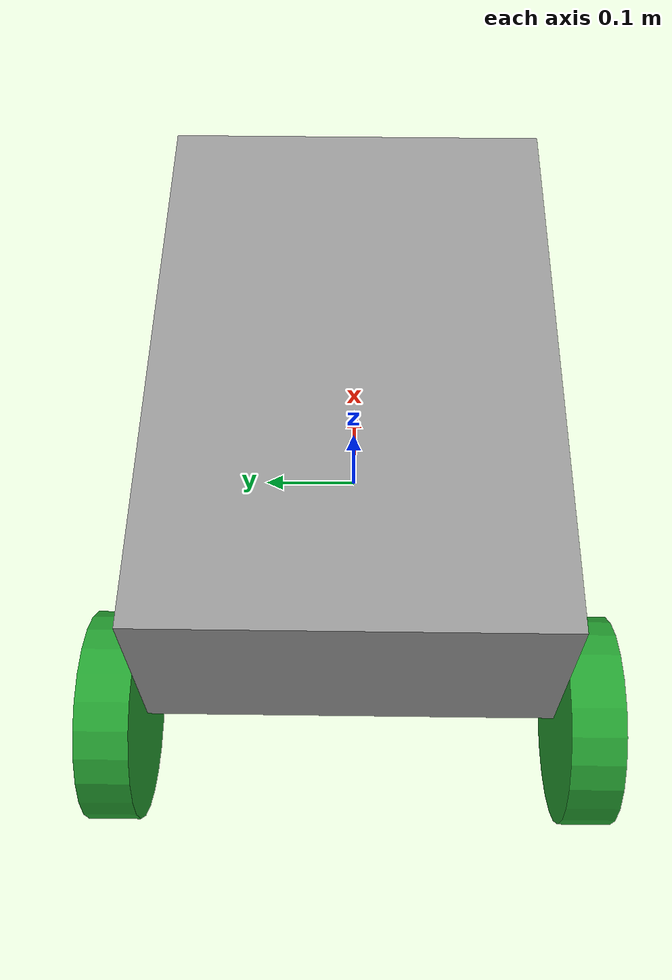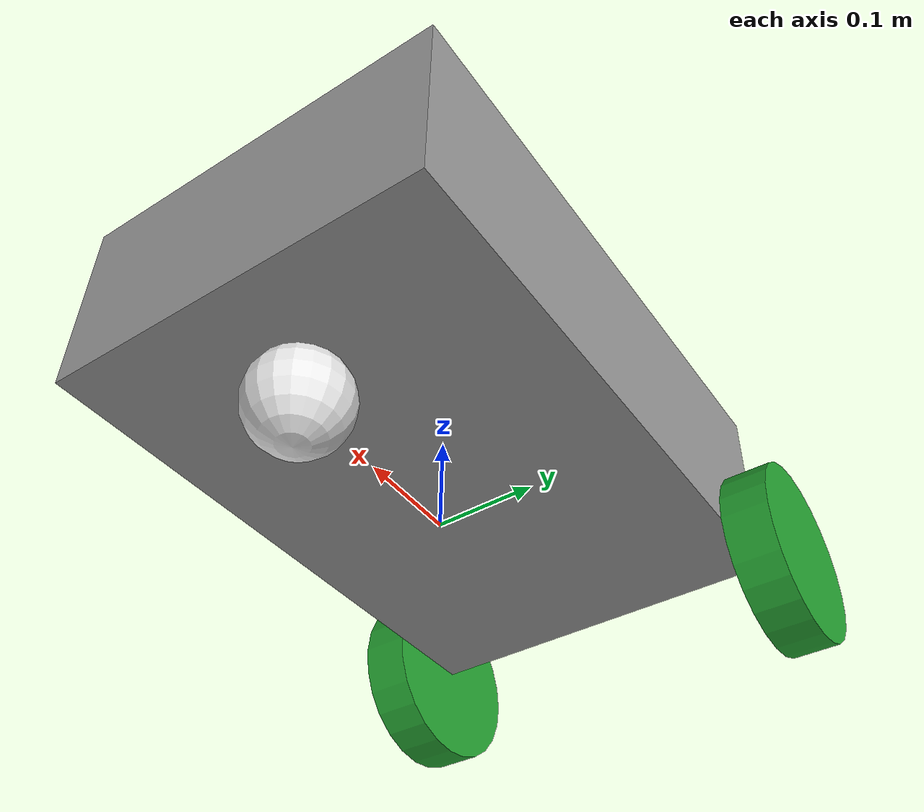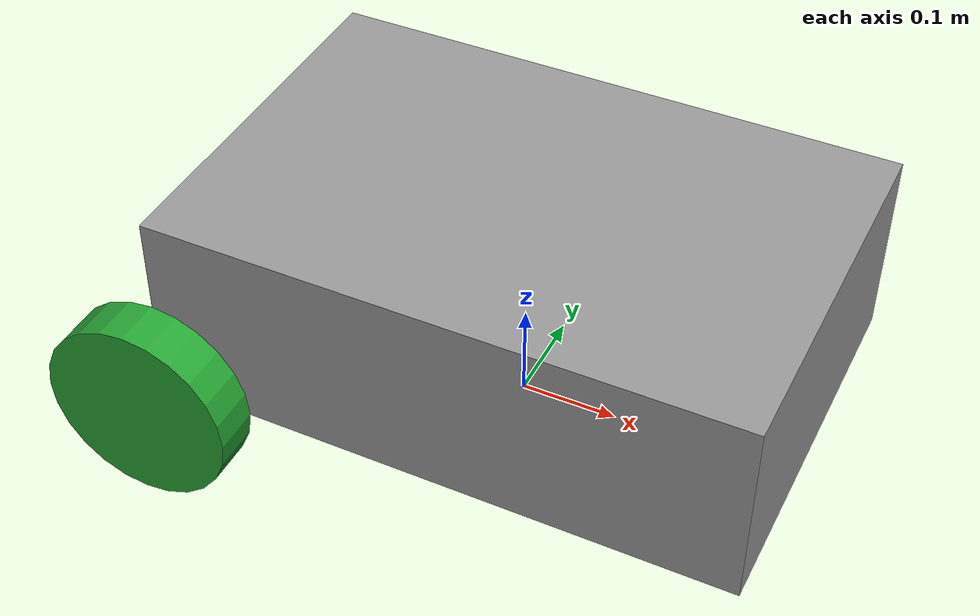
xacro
<?xml version="1.0" encoding="utf-8"?>

<robot xmlns:xacro="http://ros.org/wiki/xacro" >

    <xacro:property name="base_length" value="0.6"/>
    <xacro:property name="base_width" value="0.4"/>
    <xacro:property name="base_height" value="0.2"/>

    <xacro:property name="wheel_radius" value="0.1"/>
    <xacro:property name="wheel_lenght" value="0.05"/>

    <link name = "base_footprint" />

    <link name = "base_link">

        <visual>
            <origin xyz="0.0 0.0 ${base_height/2.0}" rpy="0 0 0" />
            <geometry>
                <box size="${base_length} ${base_width} ${base_height}" />
            </geometry>
            <material name="SemiTransparentGray"/>
        </visual>

        <collision>
            <origin xyz="0.0 0.0 ${base_height/2.0}" rpy="0 0 0" />
            <geometry>
                <box size="${base_length} ${base_width} ${base_height}" />
            </geometry>
        </collision>

        <xacro:box_inertia m="5.0" l="${base_length}" w="${base_width}" h="${base_height}"
        xyz="0.0 0.0 ${base_height/2.0}" rpy="0 0 0"/>

    </link>

    <xacro:macro name="wheel_link" params="prefix">
        <link name="${prefix}_wheel_link">

            <visual>
                <origin xyz="0 0 0" rpy="${pi/2.0} 0 0"/>
                <geometry>
                    <cylinder radius = "${wheel_radius}" length = "${wheel_lenght}" />
                </geometry>
                <material name="green"/>
            </visual>

            <collision>
                <origin xyz="0 0 0" rpy="${pi/2.0} 0 0"/>
                <geometry>
                    <cylinder radius = "${wheel_radius}" length = "${wheel_lenght}" />
                </geometry>
            </collision>

            <xacro:cylinder_inertia m = "0.5" r="${wheel_radius}" h = "${wheel_lenght}"
            xyz = "0 0 0" rpy = "${pi/2.0} 0 0"/>

        </link>

    </xacro:macro>

    <xacro:wheel_link prefix="right" />
    <xacro:wheel_link prefix="left" />

    <link name="caster_wheel_link">

        <visual>
            <origin xyz="0 0 0" rpy="0 0 0"/>
            <geometry>
                <sphere radius = "${wheel_radius/2.0}" />
            </geometry>
            <material name="white"/>
        </visual>

        <collision>
            <origin xyz="0 0 0" rpy="0 0 0"/>
            <geometry>
                <sphere radius = "${wheel_radius/2.0}" />
            </geometry>
        </collision>

        <xacro:sphere_inertia m = "0.5" r="${wheel_radius/2.0}"
        xyz = "0 0 0" rpy = "0 0 0"/>

    </link>

    <joint name="base_joint" type="fixed">
        <parent link="base_footprint"/>
        <child link="base_link"/>
        <origin xyz= "0 0 ${wheel_radius/2.0}" rpy = "0 0 0" />
    </joint>

    <joint name="base_right_wheel_joint" type="continuous">
        <parent link="base_link"/>
        <child link="right_wheel_link"/>
        <origin xyz="${-base_length/2.0} ${-(base_width+wheel_lenght)/2.0} 0" rpy="0 0 0"/>
        <axis xyz = "0 1 0"/>
    </joint>

    <joint name="base_left_wheel_joint" type="continuous">
        <parent link="base_link"/>
        <child link="left_wheel_link"/>
        <origin xyz="${-base_length/2.0} ${(base_width+wheel_lenght)/2.0} 0" rpy="0 0 ${pi}"/>
        <axis xyz = "0 1 0"/>
    </joint>

    <joint name="base_caster_wheel_joint" type="fixed">
        <parent link="base_link"/>
        <child link="caster_wheel_link"/>
        <origin xyz="${base_length / 3.0} 0 ${-wheel_radius / 2.0}" rpy="0 0 0"/>
    </joint>

</robot>
